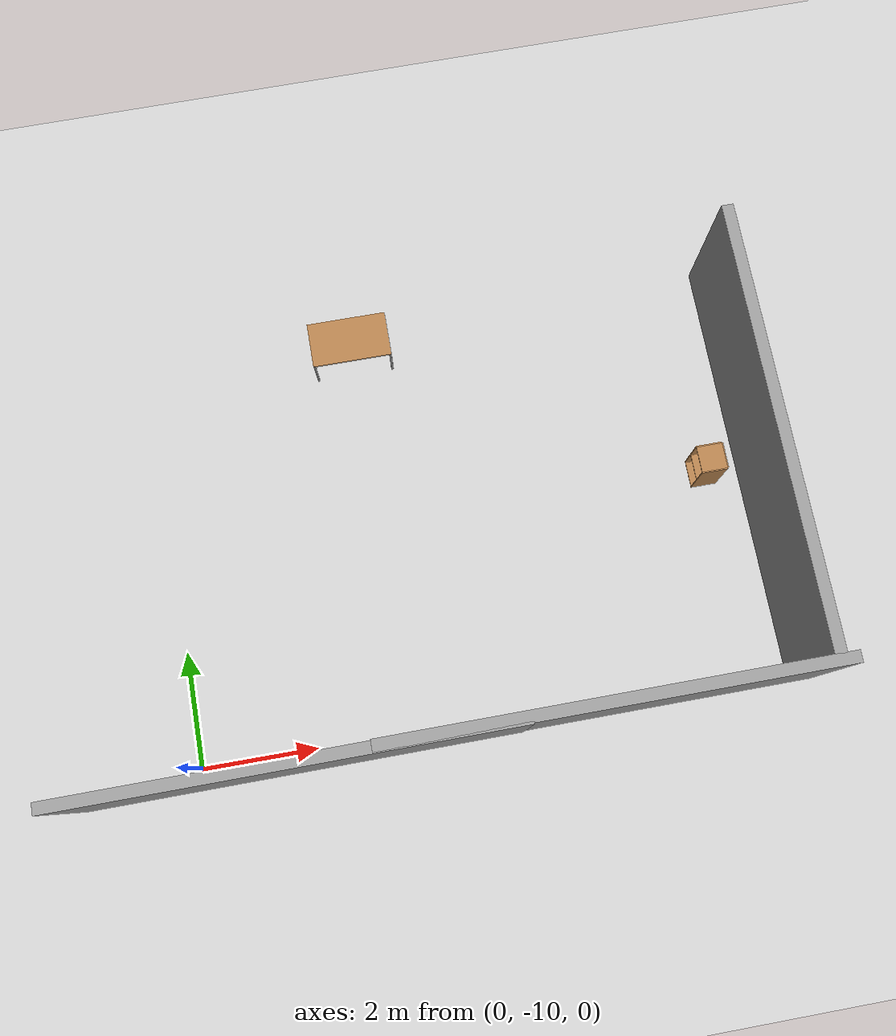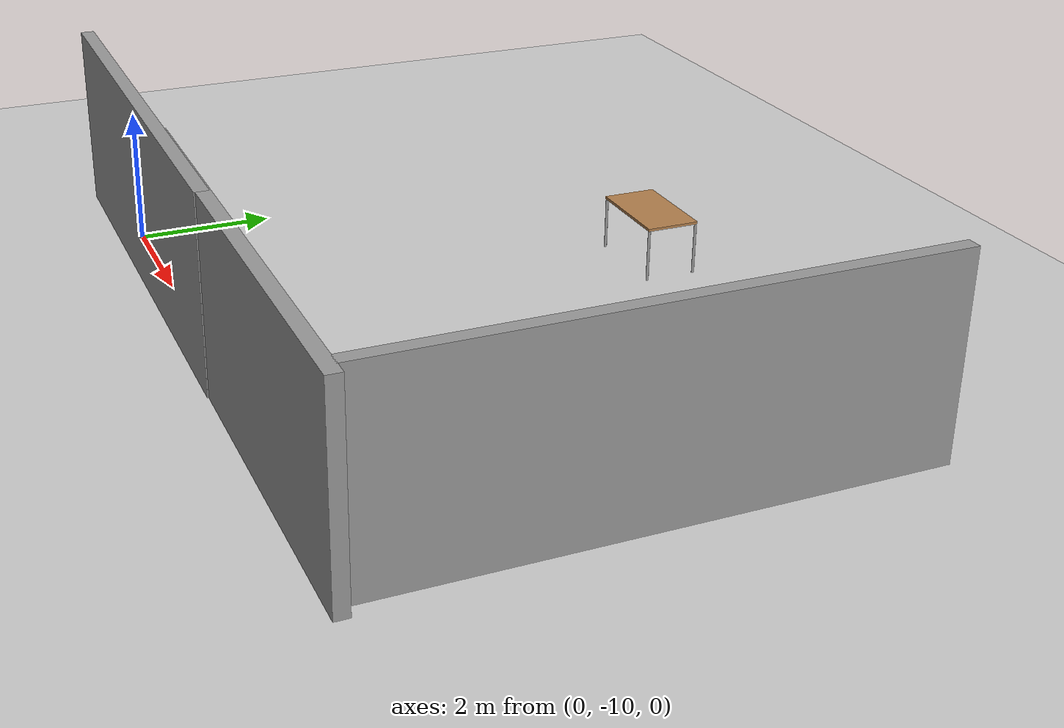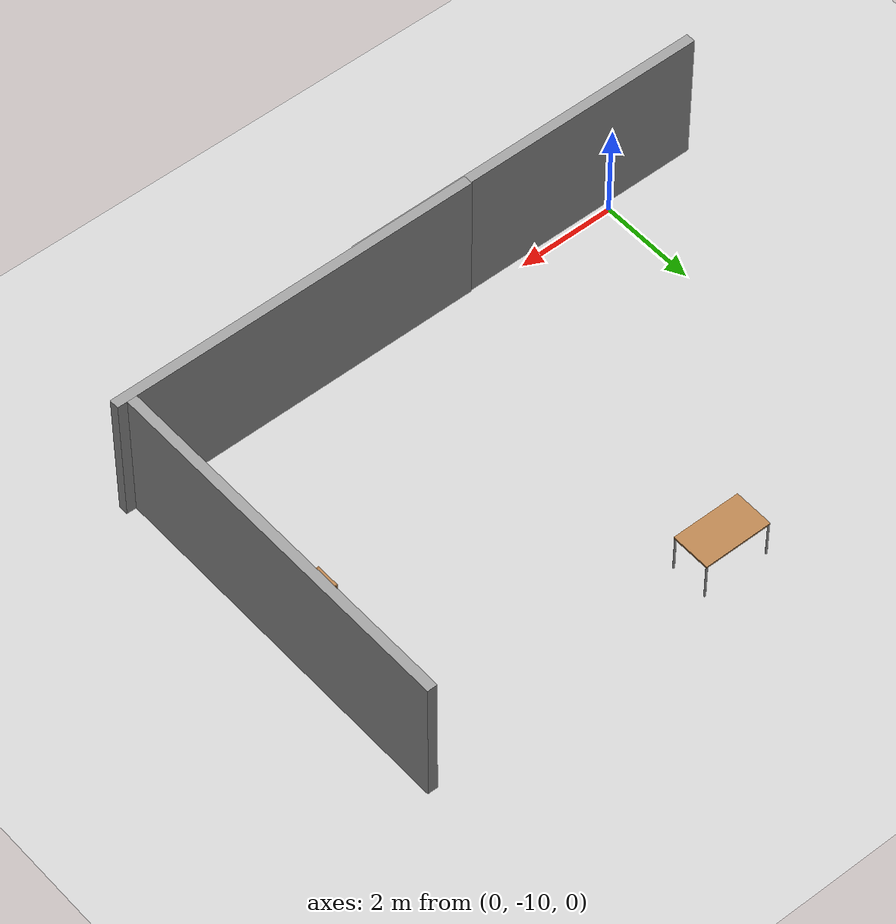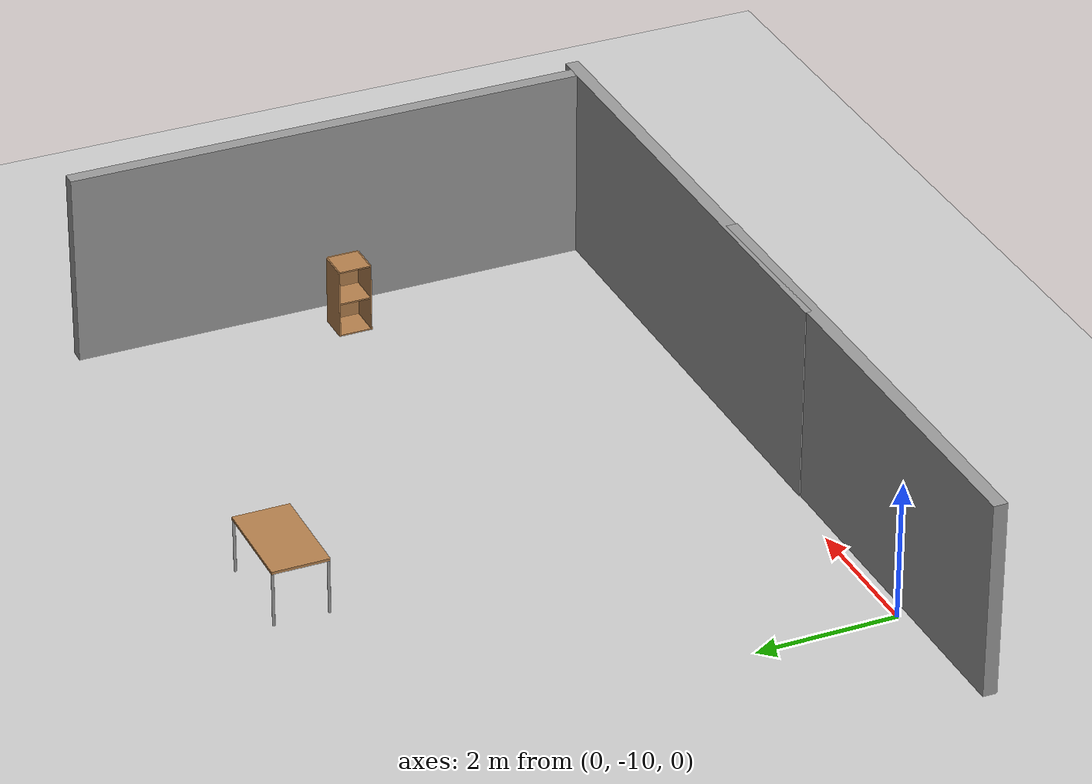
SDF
<sdf version="1.7">
 <world name="default">
  <model name="ground_plane">
   <static>1</static>
   <link name="link">
    <collision name="collision">
     <geometry><plane><normal>0 0 1</normal><size>100 100</size></plane></geometry>
     <surface>
      <contact><collide_bitmask>65535</collide_bitmask></contact>
      <friction><ode><mu>100</mu><mu2>50</mu2></ode></friction>
     </surface>
    </collision>
    <visual name="visual">
     <cast_shadows>0</cast_shadows>
     <geometry><plane><normal>0 0 1</normal><size>100 100</size></plane></geometry>
     <material>
      <script><uri>file://media/materials/scripts/gazebo.material</uri><name>Gazebo/Grey</name></script>
     </material>
    </visual>
   </link>
  </model>
  <model name="table">
   <static>0</static>
   <link name="link">
    <collision name="surface">
     <pose>0 0 0.8 0 -0 0</pose>
     <geometry><box><size>1.5 0.8 0.03</size></box></geometry>
     <surface><friction><ode><mu>0.6</mu><mu2>0.6</mu2></ode></friction></surface>
    </collision>
    <visual name="visual1">
     <pose>0 0 0.8 0 -0 0</pose>
     <geometry><box><size>1.4 0.8 0.04</size></box></geometry>
     <material>
      <script><uri>file://media/materials/scripts/gazebo.material</uri><name>Gazebo/Wood</name></script>
     </material>
    </visual>
    <collision name="front_left_leg_collision">
     <pose>0.68 0.38 0.4 0 -0 0</pose>
     <geometry><cylinder><radius>0.02</radius><length>0.8</length></cylinder></geometry>
    </collision>
    <visual name="front_left_leg_visual">
     <pose>0.68 0.38 0.4 0 -0 0</pose>
     <geometry><cylinder><radius>0.02</radius><length>0.8</length></cylinder></geometry>
     <material>
      <script><uri>file://media/materials/scripts/gazebo.material</uri><name>Gazebo/Grey</name></script>
     </material>
    </visual>
    <collision name="front_right_leg_collision">
     <pose>0.68 -0.38 0.4 0 -0 0</pose>
     <geometry><cylinder><radius>0.02</radius><length>0.8</length></cylinder></geometry>
    </collision>
    <visual name="front_right_leg_visual">
     <pose>0.68 -0.38 0.4 0 -0 0</pose>
     <geometry><cylinder><radius>0.02</radius><length>0.8</length></cylinder></geometry>
     <material>
      <script><uri>file://media/materials/scripts/gazebo.material</uri><name>Gazebo/Grey</name></script>
     </material>
    </visual>
    <collision name="back_right_leg_collision">
     <pose>-0.68 -0.38 0.4 0 -0 0</pose>
     <geometry><cylinder><radius>0.02</radius><length>0.8</length></cylinder></geometry>
    </collision>
    <visual name="back_right_leg_visual">
     <pose>-0.68 -0.38 0.4 0 -0 0</pose>
     <geometry><cylinder><radius>0.02</radius><length>0.8</length></cylinder></geometry>
     <material>
      <script><uri>file://media/materials/scripts/gazebo.material</uri><name>Gazebo/Grey</name></script>
     </material>
    </visual>
    <collision name="back_left_leg_collision">
     <pose>-0.68 0.38 0.4 0 -0 0</pose>
     <geometry><cylinder><radius>0.02</radius><length>0.8</length></cylinder></geometry>
    </collision>
    <visual name="back_left_leg_visual">
     <pose>-0.68 0.38 0.4 0 -0 0</pose>
     <geometry><cylinder><radius>0.02</radius><length>0.8</length></cylinder></geometry>
     <material>
      <script><uri>file://media/materials/scripts/gazebo.material</uri><name>Gazebo/Grey</name></script>
     </material>
    </visual>
    <inertial>
     <inertia><ixx>1</ixx><ixy>0</ixy><ixz>0</ixz><iyy>1</iyy><iyz>0</iyz><izz>1</izz></inertia>
     <mass>1</mass>
    </inertial>
   </link>
   <pose>3.70164 -3.0821 -8e-06 -2e-06 -0 -0.004427</pose>
  </model>
  <model name="cabinet">
   <static>1</static>
   <link name="cabinet_bottom_plate">
    <inertial>
     <pose>0 0 -1 0 -0 0</pose>
     <inertia><ixx>2.05</ixx><ixy>0</ixy><ixz>0</ixz><iyy>2.05</iyy><iyz>0</iyz><izz>2.05</izz></inertia>
     <mass>25</mass>
    </inertial>
    <collision name="cabinet_bottom_plate_geom">
     <pose>0 0 0.01 0 -0 0</pose>
     <geometry><box><size>0.45 0.45 0.02</size></box></geometry>
    </collision>
    <visual name="cabinet_bottom_plate_geom_visual">
     <pose>0 0 0.01 0 -0 0</pose>
     <geometry><box><size>0.45 0.45 0.02</size></box></geometry>
     <material>
      <script><uri>file://media/materials/scripts/gazebo.material</uri><name>Gazebo/Wood</name></script>
     </material>
    </visual>
    <collision name="cabinet_bottom_plate_geom_cabinet_back_plate">
     <pose>0.235 0 0.51 0 -0 0</pose>
     <geometry><box><size>0.02 0.45 1.02</size></box></geometry>
    </collision>
    <visual name="cabinet_bottom_plate_geom_cabinet_back_plate_visual">
     <pose>0.235 0 0.51 0 -0 0</pose>
     <geometry><box><size>0.02 0.45 1.02</size></box></geometry>
     <material>
      <script><uri>file://media/materials/scripts/gazebo.material</uri><name>Gazebo/Wood</name></script>
     </material>
    </visual>
    <collision name="cabinet_bottom_plate_geom_cabinet_left_plate">
     <pose>0 0.235 0.51 0 -0 0</pose>
     <geometry><box><size>0.45 0.02 1.02</size></box></geometry>
    </collision>
    <visual name="cabinet_bottom_plate_geom_cabinet_left_plate_visual">
     <pose>0 0.235 0.51 0 -0 0</pose>
     <geometry><box><size>0.45 0.02 1.02</size></box></geometry>
     <material>
      <script><uri>file://media/materials/scripts/gazebo.material</uri><name>Gazebo/Wood</name></script>
     </material>
    </visual>
    <collision name="cabinet_bottom_plate_geom_cabinet_middle_plate">
     <pose>0 0 0.51 0 -0 0</pose>
     <geometry><box><size>0.45 0.45 0.02</size></box></geometry>
    </collision>
    <visual name="cabinet_bottom_plate_geom_cabinet_middle_plate_visual">
     <pose>0 0 0.51 0 -0 0</pose>
     <geometry><box><size>0.45 0.45 0.02</size></box></geometry>
     <material>
      <script><uri>file://media/materials/scripts/gazebo.material</uri><name>Gazebo/Wood</name></script>
     </material>
    </visual>
    <collision name="cabinet_bottom_plate_geom_cabinet_right_plate">
     <pose>0 -0.235 0.51 0 -0 0</pose>
     <geometry><box><size>0.45 0.02 1.02</size></box></geometry>
    </collision>
    <visual name="cabinet_bottom_plate_geom_cabinet_right_plate_visual">
     <pose>0 -0.235 0.51 0 -0 0</pose>
     <geometry><box><size>0.45 0.02 1.02</size></box></geometry>
     <material>
      <script><uri>file://media/materials/scripts/gazebo.material</uri><name>Gazebo/Wood</name></script>
     </material>
    </visual>
    <collision name="cabinet_bottom_plate_geom_cabinet_top_plate">
     <pose>0 0 1.01 0 -0 0</pose>
     <geometry><box><size>0.45 0.45 0.02</size></box></geometry>
    </collision>
    <visual name="cabinet_bottom_plate_geom_cabinet_top_plate_visual">
     <pose>0 0 1.01 0 -0 0</pose>
     <geometry><box><size>0.45 0.45 0.02</size></box></geometry>
     <material>
      <script><uri>file://media/materials/scripts/gazebo.material</uri><name>Gazebo/Wood</name></script>
     </material>
    </visual>
   </link>
   <pose>9.50716 -6.39569 0 0 -0 0</pose>
  </model>
  <model name="grey_wall">
   <static>1</static>
   <link name="link">
    <pose>0 0 1.4 0 -0 0</pose>
    <collision name="collision"><geometry><box><size>7.5 0.2 2.8</size></box></geometry></collision>
    <visual name="visual">
     <cast_shadows>0</cast_shadows>
     <geometry><box><size>7.5 0.2 2.8</size></box></geometry>
     <material>
      <script>
       <uri>model://grey_wall/materials/scripts</uri>
       <uri>model://grey_wall/materials/textures</uri>
       <name>vrc/grey_wall</name>
      </script>
     </material>
    </visual>
   </link>
   <pose>1.7526 -10.2537 0 0 -0 0</pose>
  </model>
  <model name="grey_wall_clone">
   <static>1</static>
   <link name="link">
    <pose>0 0 1.4 0 -0 0</pose>
    <collision name="collision"><geometry><box><size>7.5 0.2 2.8</size></box></geometry></collision>
    <visual name="visual">
     <cast_shadows>0</cast_shadows>
     <geometry><box><size>7.5 0.2 2.8</size></box></geometry>
     <material>
      <script>
       <uri>model://grey_wall/materials/scripts</uri>
       <uri>model://grey_wall/materials/textures</uri>
       <name>vrc/grey_wall</name>
      </script>
     </material>
    </visual>
   </link>
   <pose>6.8033 -10.2358 0 0 -0 0</pose>
  </model>
  <model name="grey_wall_clone_0">
   <static>1</static>
   <link name="link">
    <pose>0 0 1.4 0 -0 0</pose>
    <collision name="collision"><geometry><box><size>7.5 0.2 2.8</size></box></geometry></collision>
    <visual name="visual">
     <cast_shadows>0</cast_shadows>
     <geometry><box><size>7.5 0.2 2.8</size></box></geometry>
     <material>
      <script>
       <uri>model://grey_wall/materials/scripts</uri>
       <uri>model://grey_wall/materials/textures</uri>
       <name>vrc/grey_wall</name>
      </script>
     </material>
    </visual>
   </link>
   <pose>10.2505 -6.39612 0 0 -0 1.57309</pose>
  </model>
 </world>
</sdf>
